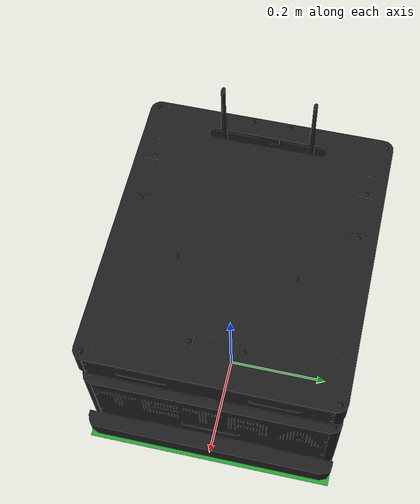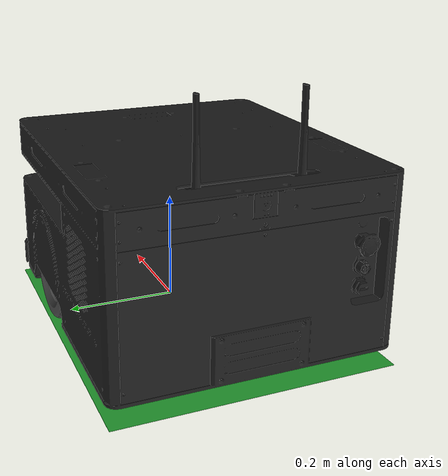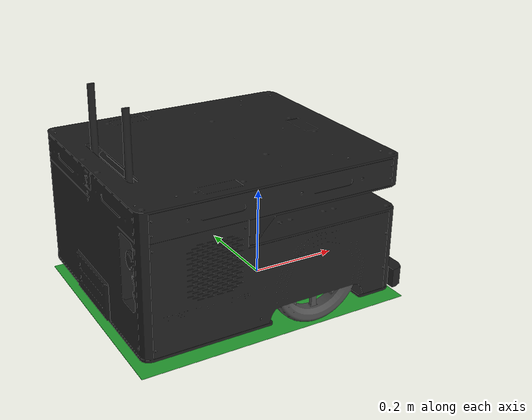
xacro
<?xml version="1.0"?>

<robot name="tetra" xmlns:xacro="http://www.ros.org/wiki/xacro">

  <!-- Define a number of dimensions using properties -->
  <xacro:property name="base_length" value="0.6127" />
  <xacro:property name="base_radius" value="0.2452" />
  <xacro:property name="wheel_offset_x" value="0.0" />
  <xacro:property name="wheel_offset_y" value="0.220" />
  <xacro:property name="wheel_offset_z" value="-0.1005" />
  <xacro:property name="PI" value="3.1415926" />

  <xacro:macro name="cylinder_inertia" params="m r h">
        <inertia ixx="${m*(3*r*r+h*h)/12}" ixy="0" ixz="0" iyy="${m*(3*r*r+h*h)/12}" iyz="0" izz="${m*r*r/2}" />
  </xacro:macro>

  <!-- define a wheel -->
  <joint name="base_l_wheel_joint" type="fixed">
    <axis xyz="0 1 0" />
    <origin xyz="${wheel_offset_x} ${wheel_offset_y} 0" rpy="0 0 0" />
    <parent link="base_link"/>
    <child link="base_l_wheel_link"/>
   </joint>
    <link name="base_l_wheel_link">
  <visual>
    <origin xyz=" 0 ${-1.0*wheel_offset_y} 0 " rpy="0 0 0" />
	<geometry>
	  <mesh filename="package://tetra_description/meshes/wheel_drive_left.stl" scale="0.001 0.001 0.001" />
	</geometry>
	<material name="darkgrey"/>
  </visual>
    </link>

 <joint name="base_r_wheel_joint" type="fixed">
    <axis xyz="0 1 0" />
    <origin xyz="${wheel_offset_x} ${-1.0*wheel_offset_y} 0" rpy="0 0 0" />
    <parent link="base_link"/>
    <child link="base_r_wheel_link"/>
   </joint>
    <link name="base_r_wheel_link">
  <visual>
    <origin xyz=" 0 ${wheel_offset_y} 0 " rpy="0 0 0" />
	<geometry>
	  <mesh filename="package://tetra_description/meshes/wheel_drive_right.stl" scale="0.001 0.001 0.001" />
	</geometry>
	<material name="darkgrey"/>
  </visual>
    </link>

  <!-- The base xacro macro -->

   <link name= "base_link">
    <visual>
    <origin xyz=" 0 0 0 " rpy="0 0 0" />
      <geometry>
        <mesh
          filename="package://tetra_description/meshes/platform_body.stl" scale="0.001 0.001 0.001" />
      </geometry>
      <material name="black"/>
    </visual>
      <collision>
            <origin xyz="0 0 0" rpy="0 0 0"/>
            <geometry>
                <cylinder length="${base_length}" radius="${base_radius}"/>
            </geometry>
      </collision>
    </link>

  <link name="base_footprint">
      <visual>
        <origin xyz="-0.08935 0 0" rpy="0 0 0" />
        <geometry>
	  <box size="0.6127 0.4904 0.001" />
        </geometry>
        <material name="transparentgreen" />
      </visual>
  </link>

  <joint name="base_joint" type="fixed"> <!--fixed-->
    <origin xyz="0 0 ${-wheel_offset_z}" rpy="0 0 0" />
    <parent link="base_footprint"/>
    <child link="base_link" />
  </joint>

  <!-- Rear Caster-->
   <link name="rear_caster_rotate">
            <visual>
                <origin xyz="0 0 0" rpy="0 0 0"/>
                <geometry>
                    <mesh filename="package://tetra_description/meshes/caster_yoke.stl" scale="0.001 0.001 0.001" />
                </geometry>
                <material name="darkgrey" />
            </visual>
            <collision>
                <origin xyz="0 0 0" rpy="0 0 0"/>
                <geometry>
                    <mesh filename="package://tetra_description/meshes/caster_yoke.stl" scale="0.001 0.001 0.001" />
                </geometry>
            </collision>
            <inertial>
                <mass value="0.1"/>
                <origin xyz="0 0 0" rpy="0 0 0"/>
                <xacro:cylinder_inertia m="0.1" r="0.03" h="0.03"/>
            </inertial>
        </link>

        <joint name="rear_caster_rotate_joint" type="fixed">
            <parent link="base_link"/>
            <child link="rear_caster_rotate"/>
            <origin xyz="-0.300 0 0" rpy="0 0 0"/>
            <axis xyz="0 0 1"/>
        </joint>

        <link name="rear_caster_wheel">
            <visual>
                <origin xyz="0 0 0" rpy="0 0 0"/>
                <geometry>
                    <mesh filename="package://tetra_description/meshes/caster_wheel.stl" scale="0.001 0.001 0.001" />
                </geometry>
                <material name="darkgrey" />
            </visual>
            <collision>
                <origin xyz="0 0 0" rpy="0 0 0"/>
                <geometry>
                    <mesh filename="package://tetra_description/meshes/caster_wheel.stl" scale="0.001 0.001 0.001" />
                </geometry>
            </collision>
            <inertial>
                <mass value="0.1"/>
                <origin xyz="0 0 0" rpy="${PI/2} 0 0"/>
                <xacro:cylinder_inertia m="0.1" r="0.06" h="0.04"/>
            </inertial>
        </link>

        <joint name="rear_caster_wheel_joint" type="fixed">
            <parent link="rear_caster_rotate"/>
            <child link="rear_caster_wheel"/>
            <origin xyz="-0.03 0 -0.06291" rpy="0 0 0"/>
            <axis xyz="0 1 0"/>
        </joint>

</robot>
